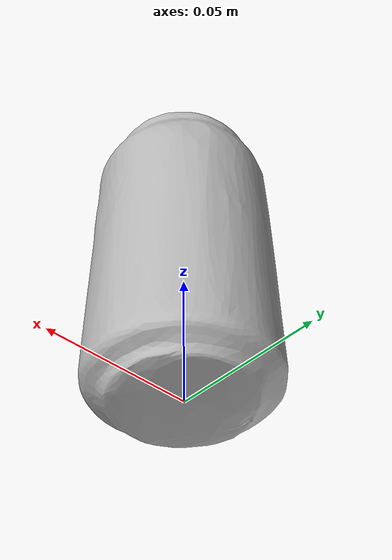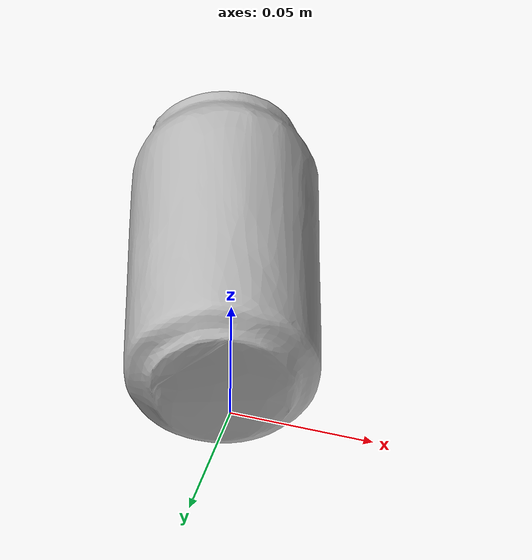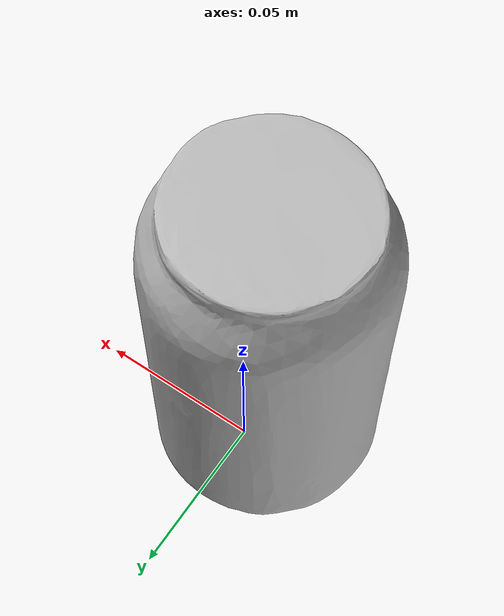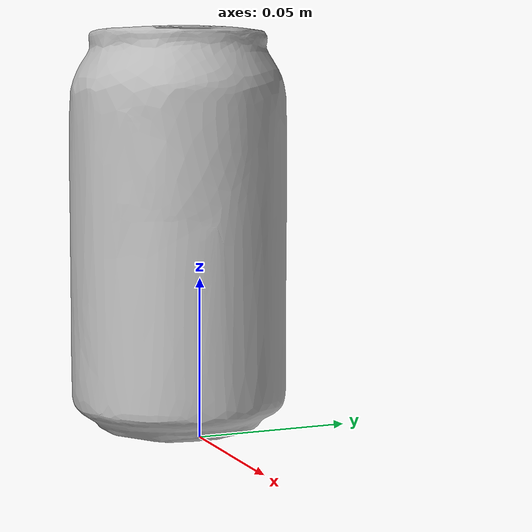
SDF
<?xml version="1.0" ?>
<sdf version="1.5">
  <model name="coke_can">
    <link name="link">
      <inertial>
        <pose>0 0 0 0 0 0</pose>
        <mass>0.009</mass>
        <inertia>
          <ixx>0.000023</ixx>
          <ixy>0</ixy>
          <ixz>0</ixz>
          <iyy>0.000023</iyy>
          <iyz>0</iyz>
          <izz>0.0000814</izz>
        </inertia>
      </inertial>
      <collision name="collision">
        <pose>0 0 -0.18 0 0 0</pose>
        <geometry>
          <mesh>
            <uri>model://coke_can/meshes/coke_can.dae</uri>
          </mesh>
        </geometry>
        <surface>
          <friction>
            <ode>
              <mu>0.063462</mu>
              <mu2>0.063462</mu2>
            </ode>
          </friction>
          <contact>
            <ode>
              <kp>10000000.0</kp>
              <kd>1.0</kd>
              <min_depth>0.001</min_depth>
              <max_vel>0.1</max_vel>
            </ode>
          </contact>
        </surface>
      </collision>
      <visual name="visual">
        <pose>0 0 -0.18 0 0 0</pose>
        <geometry>
          <mesh>
            <uri>model://coke_can/meshes/coke_can.dae</uri>
          </mesh>
        </geometry>
      </visual>
    </link>
  </model>
</sdf>
